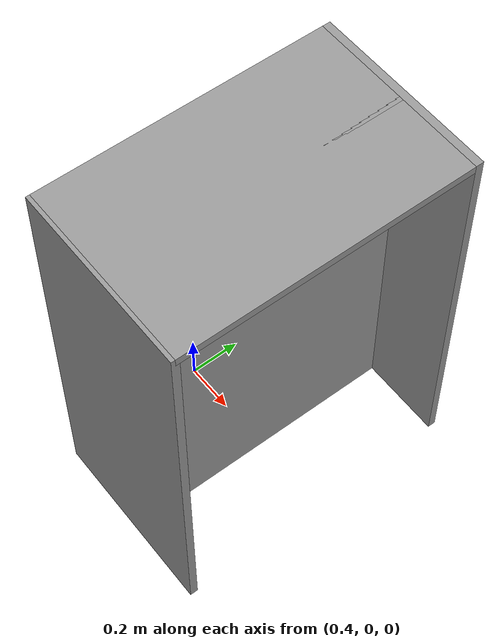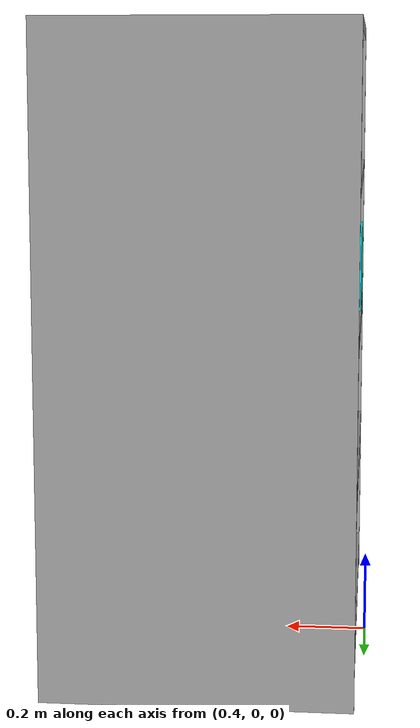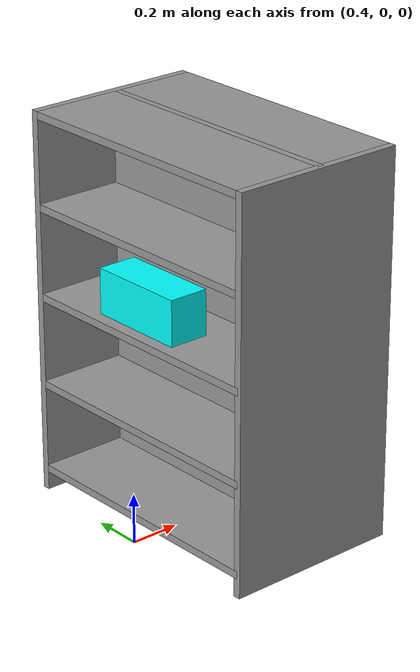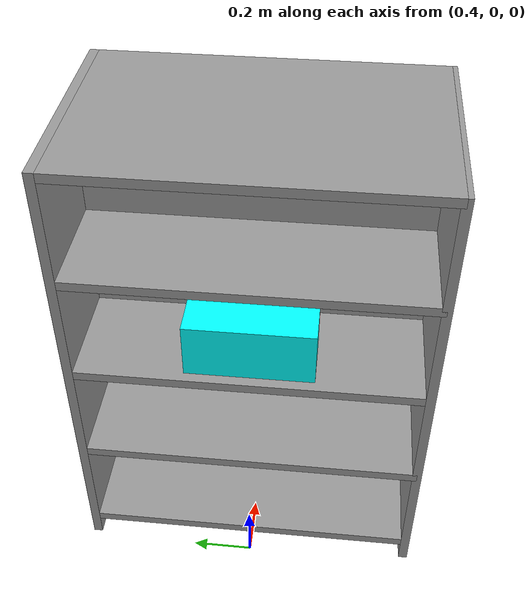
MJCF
<mujoco model="shelf">
    <worldbody>
        <body name="shelf" pos="0.42 -0.55 0">
            <!-- Flat surface of the desk -->
            <geom name="shelf0" type="box" size="0.18 0.55 0.015" pos="0.18 0.55 0.09" rgba="0.6 0.6 0.6 1" />
            <geom name="shelf1" type="box" size="0.18 0.55 0.015" pos="0.18 0.55 0.45" rgba="0.6 0.6 0.6 1"  conaffinity='4' condim='3' contype='64'/>
            <geom name="shelf2" type="box" size="0.18 0.55 0.015" pos="0.18 0.55 0.81" rgba="0.6 0.6 0.6 1"  conaffinity='4' condim='3' contype='64'/>
            <geom name="shelf3" type="box" size="0.18 0.55 0.015" pos="0.18 0.55 1.17" rgba="0.6 0.6 0.6 1"  conaffinity='4' condim='3' contype='64'/>
            <geom name="shelf4" type="box" size="0.36 0.55 0.015" pos="0.36 0.55 1.53" rgba="0.6 0.6 0.6 1"  conaffinity='4' condim='3' contype='64'/>
            <geom name="shelfback" type="box" size="0.015 0.55 0.7725" pos="0.375 0.55 0.7725" rgba="0.6 0.6 0.6 1" />
            <geom name="shelfleft" type="box" size="0.36 0.015 0.7725" pos="0.36 1.115 0.7725" rgba="0.6 0.6 0.6 1"/>
            <geom name="shelfright" type="box" size="0.36 0.015 0.7725" pos="0.36 0 0.7725" rgba="0.6 0.6 0.6 1"/>
        </body>

        <body name="box_shelf" pos='0.50 -0.0 0.95'>
            <joint name="box_shelf" type="free"/>
            <geom type='box' size='0.08 0.2 0.09' pos='0 0 0 ' euler='-0 0.0 -0'  friction='0.7 0.0001 0.00005' contype='2' conaffinity="64" mass='0.3' condim="3" rgba="0 1 1 1" />
        </body>

    </worldbody>
</mujoco>
